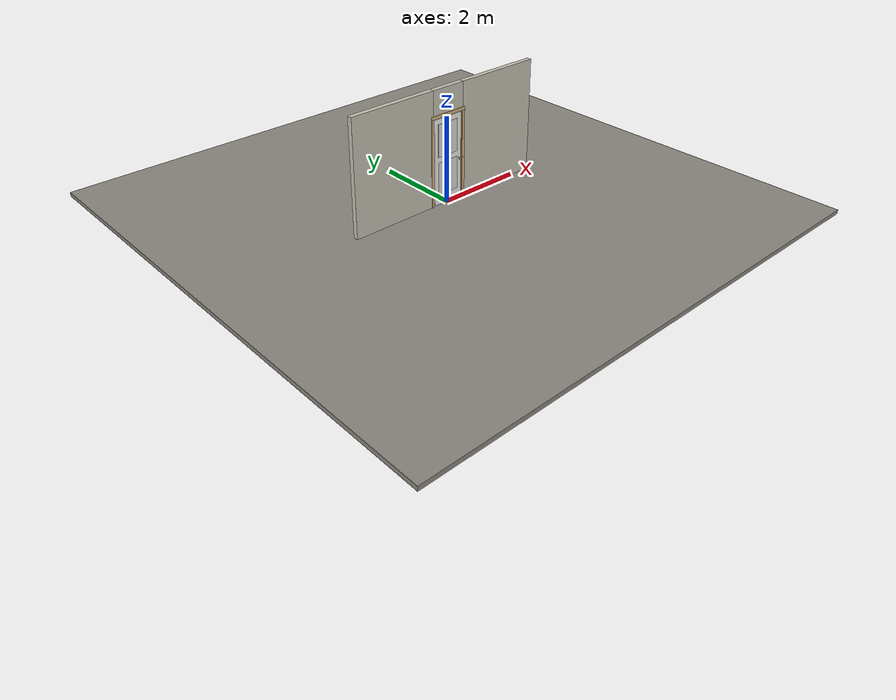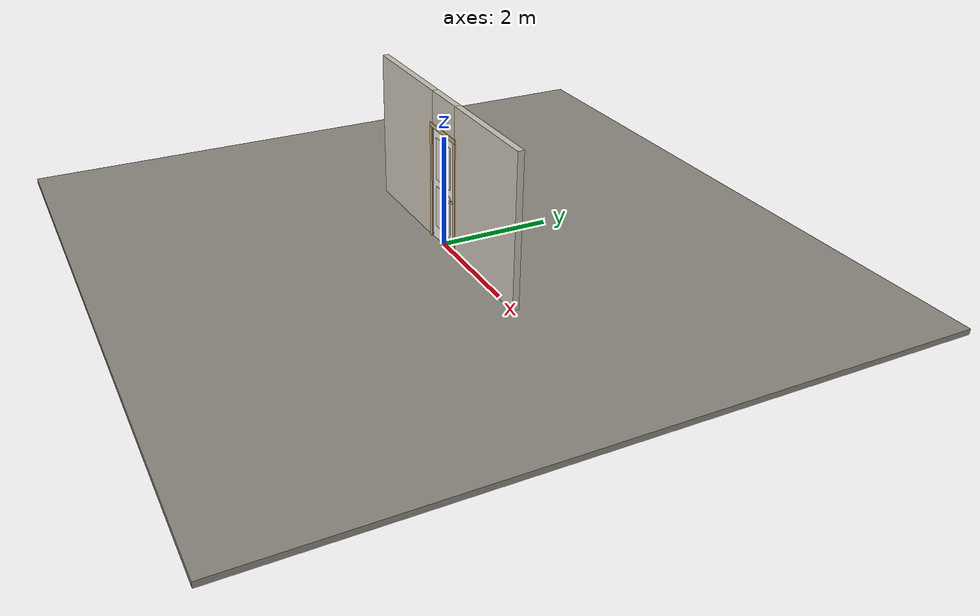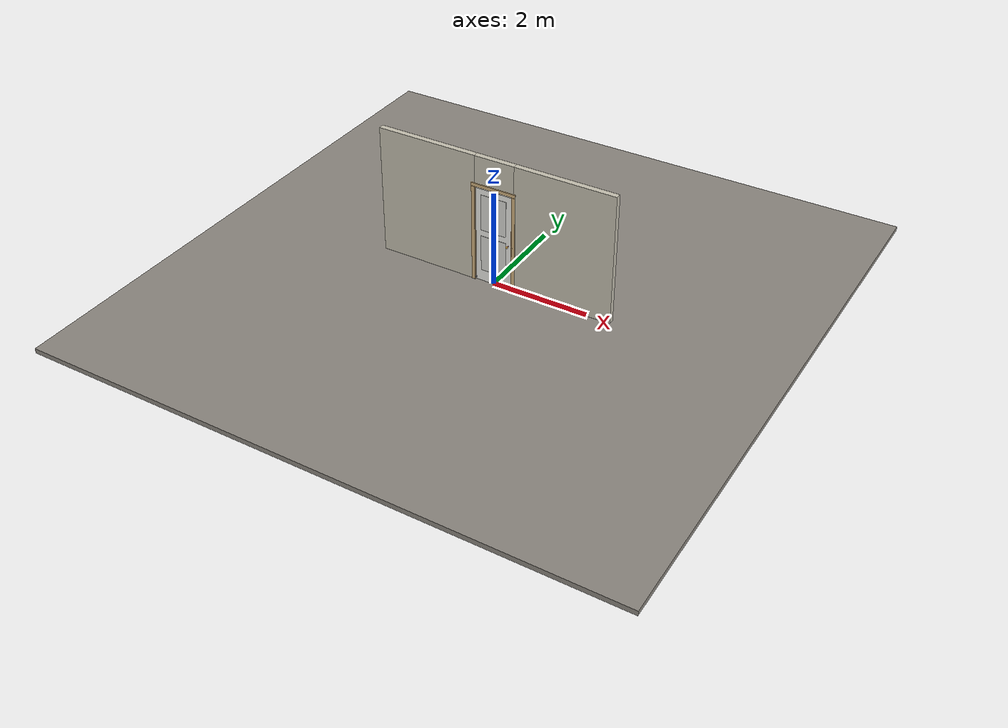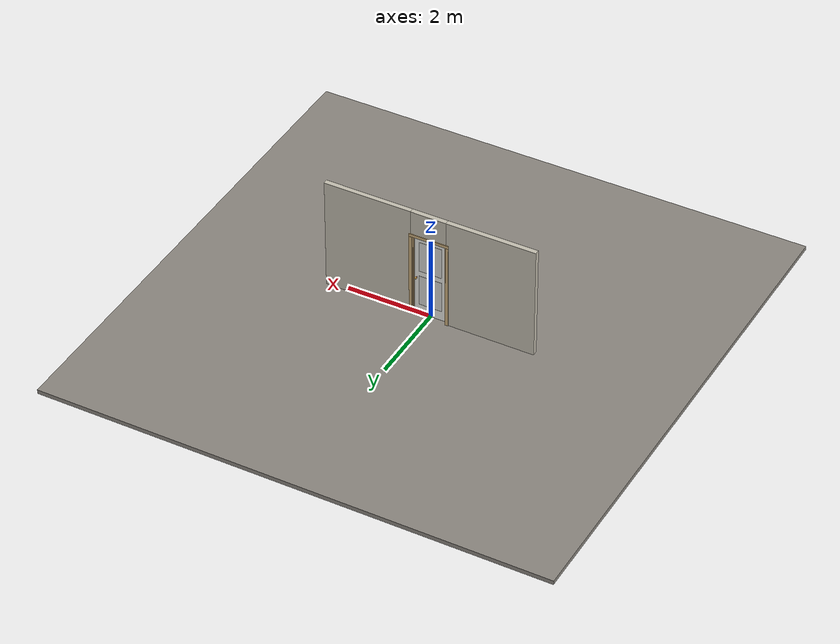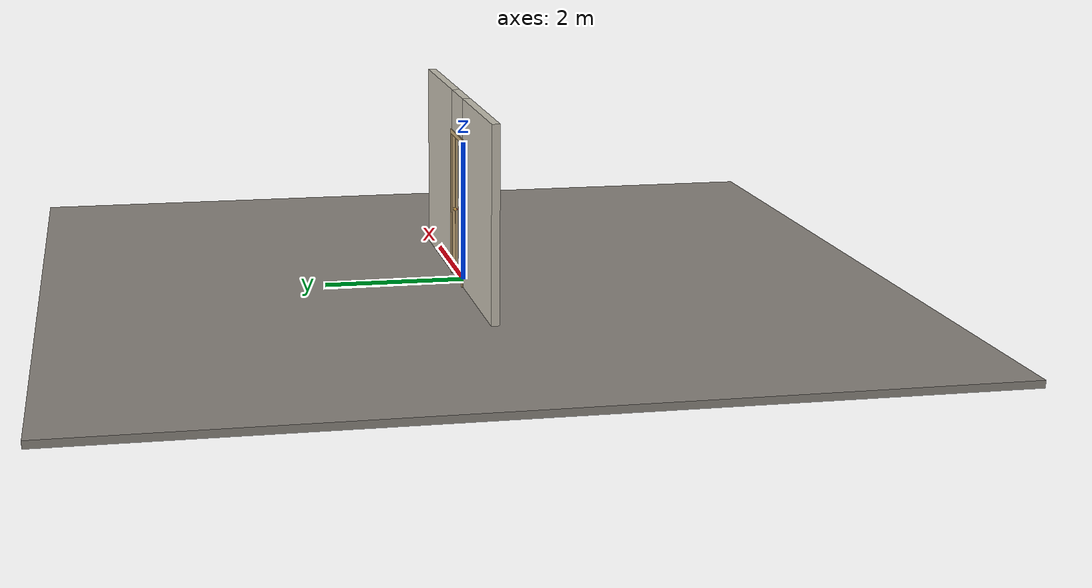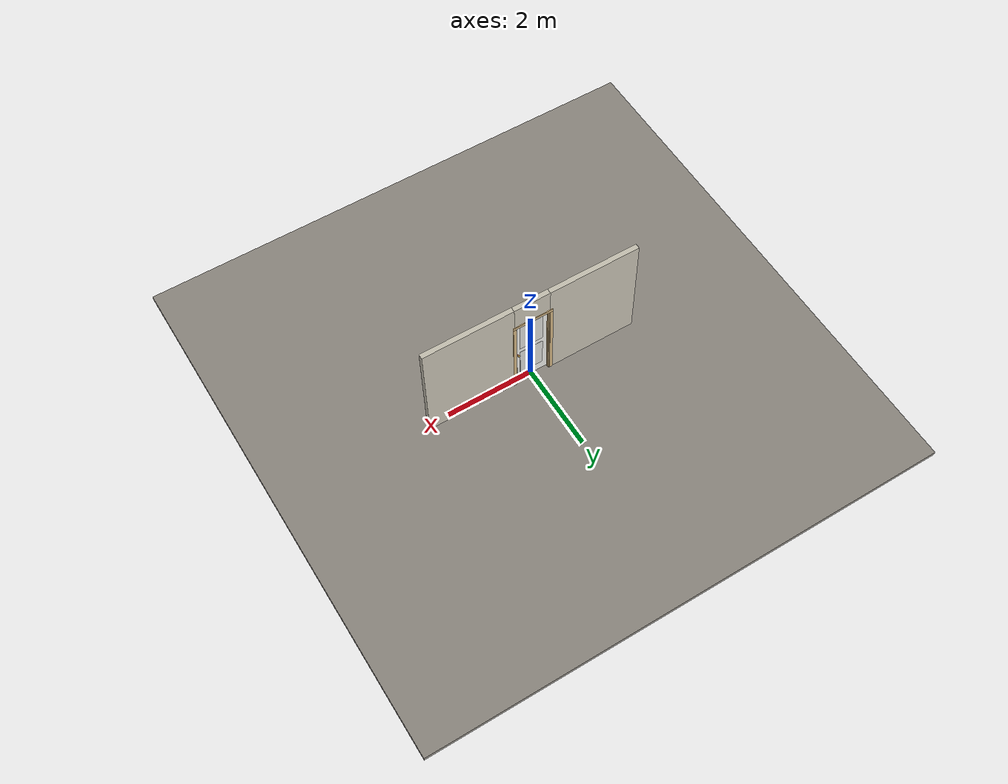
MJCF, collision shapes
<?xml version="1.0" ?>
<mujoco model="db0002_swing_single_full">
  <compiler angle="radian" meshdir="../../hardware" texturedir="../../textures" autolimits="true" inertiafromgeom="false"/>
  <option timestep="0.002" integrator="implicitfast" cone="elliptic" impratio="10" noslip_iterations="3">
    <flag multiccd="enable"/>
  </option>
  <size memory="16M"/>
  <default>
    <geom condim="4" solref="0.005 1" solimp="0.95 0.99 0.001"/>
    <joint solreflimit="0.005 1" solimplimit="0.95 0.99 0.001"/>
    <tendon solreflimit="0.005 1"/>
    <equality solref="0.002 1"/>
  </default>
  <visual>
    <headlight ambient="0.4 0.4 0.4" diffuse="0.7 0.7 0.7" specular="0.2 0.2 0.2"/>
    <quality shadowsize="4096"/>
    <map znear="0.01" zfar="60"/>
  </visual>
  <asset>
    <mesh name="hinge_c20a5829de" file="hinge_c20a5829de.obj"/>
    <mesh name="hinge_jamb_20499e6581" file="hinge_jamb_20499e6581.obj"/>
    <mesh name="knob_d1888f6f03" file="knob_d1888f6f03.obj"/>
    <material name="mat_floor" rgba="0.55 0.53 0.5 1" specular="0.2" shininess="0.15" reflectance="0"/>
    <material name="mat_wall" rgba="0.78 0.76 0.7 1" specular="0.2" shininess="0.1" reflectance="0"/>
    <material name="mat_hinge" rgba="0.55 0.56 0.58 1" specular="0.8" shininess="0.55" reflectance="0.4"/>
    <material name="mat_leaf" rgba="0.93 0.93 0.91 1" specular="0.2" shininess="0.46" reflectance="0"/>
    <material name="mat_leaf_panel" rgba="0.856 0.856 0.837 1" specular="0.2" shininess="0.46" reflectance="0"/>
    <material name="mat_op_brass" rgba="0.85 0.66 0.3 1" specular="0.8" shininess="0.75" reflectance="0.4"/>
    <material name="mat_trim" rgba="0.85 0.66 0.3 1" specular="0.8" shininess="0.75" reflectance="0.4"/>
    <material name="mat_bolt" rgba="0.85 0.66 0.3 1" specular="0.8" shininess="0.75" reflectance="0.4"/>
    <material name="mat_frame" rgba="0.82 0.7 0.5 1" specular="0.2" shininess="0.45" reflectance="0"/>
    <texture name="skybox" type="skybox" builtin="gradient" rgb1="0.6 0.7 0.85" rgb2="0.9 0.92 0.95" width="256" height="256"/>
  </asset>
  <worldbody>
    <light name="sun" pos="1.5 -2.5 4" dir="-0.3 0.5 -0.8" directional="true" diffuse="0.8 0.8 0.8" specular="0.3 0.3 0.3" castshadow="true"/>
    <light name="fill" pos="-1.5 2.5 3" dir="0.3 -0.5 -0.7" directional="true" diffuse="0.35 0.35 0.4" castshadow="false"/>
    <camera name="robot_view" pos="0 -2.509187 1.734312" xyaxes="1 0 0 0 0.26963 0.962964" fovy="52"/>
    <camera name="far_view" pos="0 2.575187 1.734312" xyaxes="-1 0 0 0 -0.26963 0.962964" fovy="52"/>
    <camera name="iso" pos="1.932062 -2.102438 2.141063" xyaxes="0.741536 0.670913 0 -0.242917 0.268487 0.932151" fovy="46"/>
    <camera name="detail_handle" pos="0.5005 -0.864 1.245" xyaxes="0.97561 0.219512 0 -0.070934 0.315262 0.94635" fovy="38"/>
    <geom name="floor" type="box" size="6 6 0.05" pos="0 0 -0.05" material="mat_floor" group="0" contype="1" conaffinity="1" friction="0.8 0.005 0.0001" density="2400"/>
    <geom name="wall_left" type="box" size="1.04825 0.0575 1.35" pos="-1.45175 0.033 1.35" material="mat_wall" group="0" contype="1" conaffinity="1" friction="0.6 0.005 0.0001" density="800"/>
    <geom name="wall_right" type="box" size="1.03325 0.0575 1.35" pos="1.46675 0.033 1.35" material="mat_wall" group="0" contype="1" conaffinity="1" friction="0.6 0.005 0.0001" density="800"/>
    <geom name="wall_header" type="box" size="0.4185 0.0575 0.303" pos="0.015 0.033 2.397" material="mat_wall" group="0" contype="1" conaffinity="1" friction="0.6 0.005 0.0001" density="800"/>
    <geom name="hinge_0_jamb" type="mesh" mesh="hinge_jamb_20499e6581" pos="-0.3815 -0.0245 0.259" material="mat_hinge" group="1" contype="0" conaffinity="0" density="7850"/>
    <geom name="hinge_1_jamb" type="mesh" mesh="hinge_jamb_20499e6581" pos="-0.3815 -0.0245 1.0198" material="mat_hinge" group="1" contype="0" conaffinity="0" density="7850"/>
    <geom name="hinge_2_jamb" type="mesh" mesh="hinge_jamb_20499e6581" pos="-0.3815 -0.0245 1.8506" material="mat_hinge" group="1" contype="0" conaffinity="0" density="7850"/>
    <geom name="jamb_hinge" type="box" size="0.0095 0.0575 1.0225" pos="-0.394 0.033 1.0225" material="mat_frame" group="0" contype="1" conaffinity="1" friction="0.6 0.005 0.0001" density="400"/>
    <geom name="strike_965_wall_n" type="box" size="0.0245 0.041325 0.0167" pos="0.409 0.049175 0.965" material="mat_frame" group="0" contype="1" conaffinity="1" friction="0.6 0.005 0.0001" density="400"/>
    <geom name="strike_965_wall_p" type="box" size="0.0245 0.008 0.0167" pos="0.409 -0.01585 0.965" material="mat_frame" group="0" contype="1" conaffinity="1" friction="0.6 0.005 0.0001" density="400"/>
    <geom name="strike_965_ramp" type="box" size="0.0245 0.01649 0.0167" pos="0.413636 -0.028673 0.965" quat="0.977148 0 0 0.212558" material="mat_frame" group="0" contype="1" conaffinity="1" friction="0.12 0.005 0.0001" density="400"/>
    <geom name="strike_965_back" type="box" size="0.01615 0.00785 0.0167" pos="0.41735 0 0.965" material="mat_frame" group="0" contype="1" conaffinity="1" friction="0.6 0.005 0.0001" density="400"/>
    <geom name="jamb_strike_0" type="box" size="0.0245 0.0575 0.47415" pos="0.409 0.033 0.47415" material="mat_frame" group="0" contype="1" conaffinity="1" friction="0.6 0.005 0.0001" density="400"/>
    <geom name="jamb_strike_1" type="box" size="0.0245 0.0575 0.53165" pos="0.409 0.033 1.51335" material="mat_frame" group="0" contype="1" conaffinity="1" friction="0.6 0.005 0.0001" density="400"/>
    <geom name="jamb_head" type="box" size="0.4185 0.0575 0.0095" pos="0.015 0.033 2.0545" material="mat_frame" group="0" contype="1" conaffinity="1" friction="0.6 0.005 0.0001" density="400"/>
    <geom name="head_stud" type="box" size="0.4185 0.0575 0.015" pos="0.015 0.033 2.079" material="mat_wall" group="0" contype="1" conaffinity="1" friction="0.6 0.005 0.0001" density="500"/>
    <geom name="stop_hinge" type="box" size="0.0055 0.016 1.0225" pos="-0.379 0.034 1.0225" material="mat_frame" group="0" contype="1" conaffinity="1" friction="0.6 0.005 0.0001" density="400"/>
    <geom name="stop_strike" type="box" size="0.0055 0.016 1.0225" pos="0.379 0.034 1.0225" material="mat_frame" group="0" contype="1" conaffinity="1" friction="0.6 0.005 0.0001" density="400"/>
    <geom name="stop_head" type="box" size="0.3845 0.016 0.0055" pos="0 0.034 2.0395" material="mat_frame" group="0" contype="1" conaffinity="1" friction="0.6 0.005 0.0001" density="400"/>
    <geom name="casing_l_n" type="box" size="0.035 0.008 1.032" pos="-0.4335 -0.0325 1.0225" material="mat_frame" group="2" contype="0" conaffinity="0" density="400"/>
    <geom name="casing_r_n" type="box" size="0.035 0.008 1.032" pos="0.4335 -0.0325 1.0225" material="mat_frame" group="2" contype="0" conaffinity="0" density="400"/>
    <geom name="casing_h_n" type="box" size="0.4685 0.008 0.035" pos="0 -0.0325 2.094" material="mat_frame" group="2" contype="0" conaffinity="0" density="400"/>
    <geom name="casing_l_p" type="box" size="0.035 0.008 1.032" pos="-0.4335 0.0985 1.0225" material="mat_frame" group="2" contype="0" conaffinity="0" density="400"/>
    <geom name="casing_r_p" type="box" size="0.035 0.008 1.032" pos="0.4335 0.0985 1.0225" material="mat_frame" group="2" contype="0" conaffinity="0" density="400"/>
    <geom name="casing_h_p" type="box" size="0.4685 0.008 0.035" pos="0 0.0985 2.094" material="mat_frame" group="2" contype="0" conaffinity="0" density="400"/>
    <site name="approach_point" pos="0 -1.5 0" quat="1 0 0 0" size="0.05" rgba="0.2 0.9 0.2 0.5" group="4"/>
    <site name="goal_point" pos="0 1.5 0" quat="1 0 0 0" size="0.05" rgba="0.2 0.9 0.2 0.5" group="4"/>
    <site name="door_plane_center" pos="0 0 1.0225" quat="1 0 0 0" size="0.02" rgba="0.2 0.9 0.2 0.5" group="4"/>
    <body name="leaf_riser" pos="-0.3845 0 0">
      <inertial pos="0.003 -0.0245 0.055" mass="0.174012" quat="0.707107 0 0.707107 0" diaginertia="0.000017053 0.00002732 0.00002732"/>
      <joint name="leaf_rise" type="slide" axis="0 0 1" limited="true" range="0 0.0176" damping="1" armature="0.5"/>
      <geom name="leaf_riser_marker" type="cylinder" size="0.014 0.018" pos="0.003 -0.0245 0.055" material="mat_hinge" group="1" contype="0" conaffinity="0" density="7850"/>
      <body name="leaf" pos="0 0 0">
        <inertial pos="0.365402 -0.000829 1.020953" mass="11.261915" quat="-0.498973 0.50179 -0.498181 -0.501048" diaginertia="0.597968402 3.878388979 4.473741421"/>
        <joint name="leaf_hinge" type="hinge" axis="0 0 -1" pos="0.003 -0.0245 0" limited="true" range="0 2.094395" damping="0.173726" frictionloss="0.182169" armature="0.02"/>
        <geom name="leaf_slab" type="box" size="0.381 0.0175 1.0108" pos="0.384 0 1.0198" material="mat_leaf" group="0" contype="1" conaffinity="1" friction="0.35 0.005 0.0001" density="1"/>
        <geom name="leaf_panel_0_n" type="box" size="0.271 0.003 0.382036" pos="0.384 -0.0205 0.633412" material="mat_leaf_panel" group="1" contype="0" conaffinity="0" density="1"/>
        <geom name="leaf_panel_0_p" type="box" size="0.271 0.003 0.382036" pos="0.384 0.0205 0.633412" material="mat_leaf_panel" group="1" contype="0" conaffinity="0" density="1"/>
        <geom name="leaf_panel_1_n" type="box" size="0.271 0.003 0.382036" pos="0.384 -0.0205 1.527484" material="mat_leaf_panel" group="1" contype="0" conaffinity="0" density="1"/>
        <geom name="leaf_panel_1_p" type="box" size="0.271 0.003 0.382036" pos="0.384 0.0205 1.527484" material="mat_leaf_panel" group="1" contype="0" conaffinity="0" density="1"/>
        <geom name="hinge_0" type="mesh" mesh="hinge_c20a5829de" pos="0.003 -0.0245 0.259" material="mat_hinge" group="1" contype="0" conaffinity="0" density="7850"/>
        <geom name="hinge_1" type="mesh" mesh="hinge_c20a5829de" pos="0.003 -0.0245 1.0198" material="mat_hinge" group="1" contype="0" conaffinity="0" density="7850"/>
        <geom name="hinge_2" type="mesh" mesh="hinge_c20a5829de" pos="0.003 -0.0245 1.8506" material="mat_hinge" group="1" contype="0" conaffinity="0" density="7850"/>
        <geom name="leaf_latch_bolt_faceplate" type="box" size="0.0006 0.01235 0.0267" pos="0.7644 0 0.965" material="mat_bolt" group="1" contype="0" conaffinity="0" density="8500"/>
        <site name="leaf_edge_mid" pos="0.765 0 1.0108" quat="1 0 0 0" size="0.02" rgba="0.2 0.9 0.2 0.5" group="4"/>
        <body name="leaf_handle" pos="0.705 0 0.965">
          <inertial pos="0 0 0" mass="1.143961" quat="-0.5 0.5 -0.5 0.5" diaginertia="0.00031237 0.003706292 0.003706292"/>
          <joint name="leaf_handle_hinge" type="hinge" axis="0 -1 0" limited="true" range="0 0.87" damping="0.143613" frictionloss="0.038" stiffness="0.5" springref="-0.5" armature="0.01"/>
          <geom name="leaf_handle_spindle" type="cylinder" size="0.006 0.0255" pos="0 0 0" quat="0.707107 -0.707107 0 0" material="mat_op_brass" group="1" contype="0" conaffinity="0" density="7850"/>
          <geom name="leaf_handle_knob_n" type="mesh" mesh="knob_d1888f6f03" pos="0 -0.0175 0" quat="0.707107 0.707107 0 0" material="mat_op_brass" group="1" contype="0" conaffinity="0" density="3000"/>
          <geom name="leaf_handle_knob_col_n" type="sphere" size="0.0243" pos="0 -0.064 0" material="mat_op_brass" group="0" contype="1" conaffinity="1" friction="0.9 0.01 0.0001" density="3000"/>
          <geom name="leaf_handle_knob_neck_n" type="cylinder" size="0.011 0.012" pos="0 -0.0295 0" quat="0.707107 -0.707107 0 0" material="mat_op_brass" group="3" contype="1" conaffinity="1" rgba="0.8 0.3 0.3 0.25" friction="0.6 0.005 0.0001" density="3000"/>
          <geom name="leaf_handle_knob_p" type="mesh" mesh="knob_d1888f6f03" pos="0 0.0175 0" quat="-0.707107 0.707107 0 0" material="mat_op_brass" group="1" contype="0" conaffinity="0" density="3000"/>
          <geom name="leaf_handle_knob_col_p" type="sphere" size="0.0243" pos="0 0.064 0" material="mat_op_brass" group="0" contype="1" conaffinity="1" friction="0.9 0.01 0.0001" density="3000"/>
          <geom name="leaf_handle_knob_neck_p" type="cylinder" size="0.011 0.012" pos="0 0.0295 0" quat="0.707107 -0.707107 0 0" material="mat_op_brass" group="3" contype="1" conaffinity="1" rgba="0.8 0.3 0.3 0.25" friction="0.6 0.005 0.0001" density="3000"/>
          <site name="leaf_handle_grip_n" pos="0 -0.064 0" quat="1 0 0 0" size="0.012" rgba="0.2 0.9 0.2 0.5" group="4"/>
          <site name="leaf_handle_grip_p" pos="0 0.064 0" quat="1 0 0 0" size="0.012" rgba="0.2 0.9 0.2 0.5" group="4"/>
        </body>
        <body name="leaf_latch_bolt" pos="0.765 0 0.965">
          <inertial pos="-0.00865 0 0" mass="0.041419" quat="0.92388 -0.382683 0 0" diaginertia="0.000000798 0.000005598 0.000005598"/>
          <joint name="leaf_latch_bolt_slide" type="slide" axis="-1 0 0" limited="true" range="0 0.0127" damping="2" frictionloss="0.3" stiffness="300" springref="-0.008333" armature="0.1"/>
          <geom name="leaf_latch_bolt_capsule" type="capsule" size="0.00635 0.015" pos="-0.00865 0 0" quat="0.707107 0 0.707107 0" material="mat_bolt" group="0" contype="1" conaffinity="1" friction="0.2 0.005 0.0001" density="8500"/>
        </body>
      </body>
    </body>
  </worldbody>
  <tendon>
    <fixed name="leaf_latch_bolt_coupling" limited="true" range="0 10">
      <joint joint="leaf_latch_bolt_slide" coef="1"/>
      <joint joint="leaf_handle_hinge" coef="-0.015679"/>
    </fixed>
  </tendon>
  <equality>
    <joint name="leaf_rise_couple" joint1="leaf_rise" joint2="leaf_hinge" polycoef="0 0.005093 0 0 0" active="true"/>
  </equality>
  <sensor>
    <jointpos name="leaf_hinge_pos" joint="leaf_hinge"/>
    <jointvel name="leaf_hinge_vel" joint="leaf_hinge"/>
    <jointpos name="leaf_handle_hinge_pos" joint="leaf_handle_hinge"/>
    <jointvel name="leaf_handle_hinge_vel" joint="leaf_handle_hinge"/>
    <jointpos name="leaf_latch_bolt_slide_pos" joint="leaf_latch_bolt_slide"/>
    <jointvel name="leaf_latch_bolt_slide_vel" joint="leaf_latch_bolt_slide"/>
  </sensor>
</mujoco>
